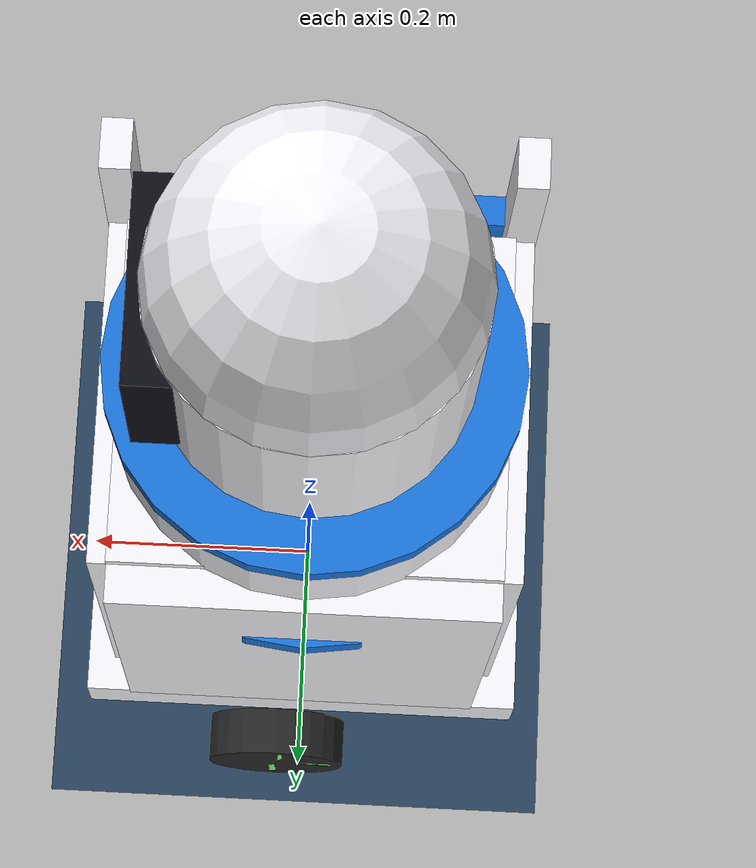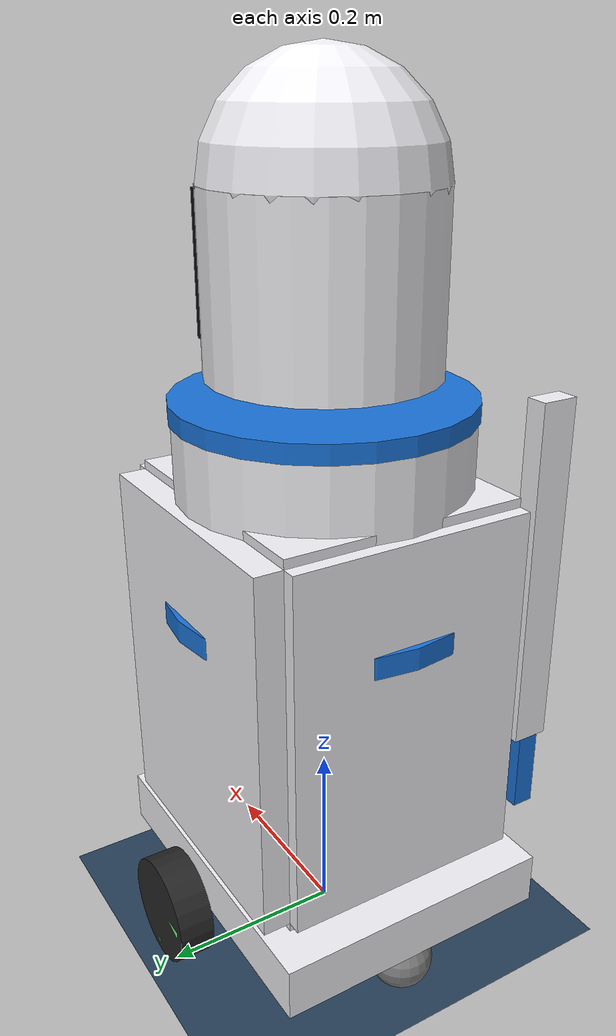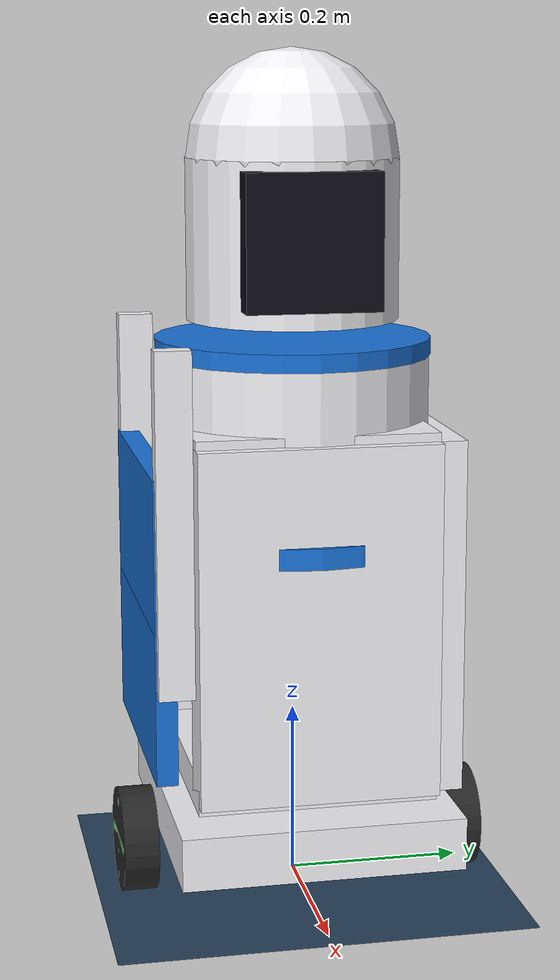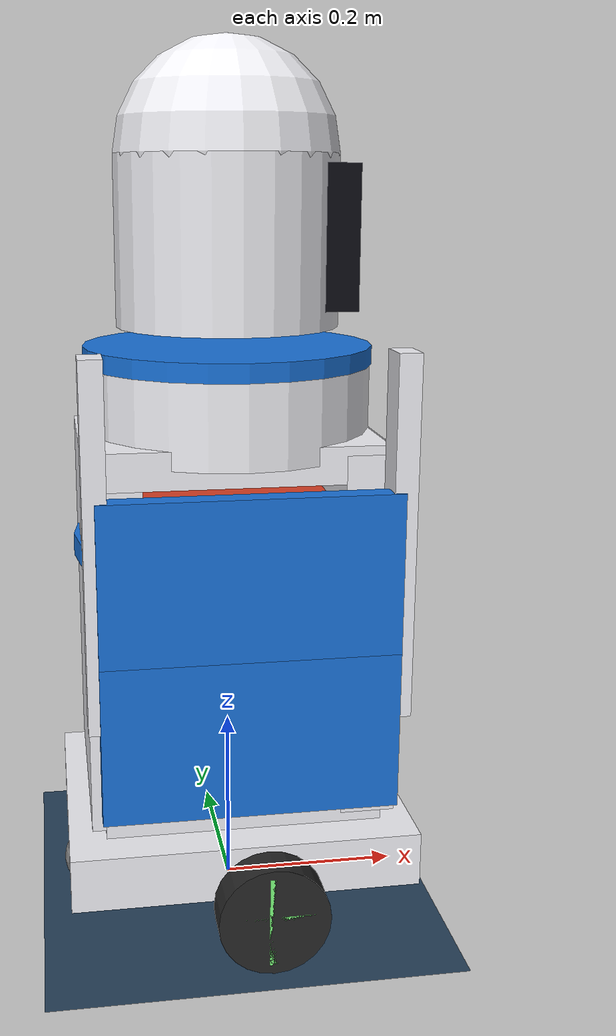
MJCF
<mujoco model="concierge_delivery_bot_v2">
  <compiler autolimits="true"/>

  <asset>
    <texture name="grid" type="2d" builtin="checker" width="512" height="512"
              rgb1=".1 .2 .3" rgb2=".2 .3 .4"/>
    <material name="grid" texture="grid" texrepeat="1 1" texuniform="true" reflectance=".2"/>
    <material name="shell_white" rgba="0.95 0.95 0.97 1"/>
    <material name="shell_accent" rgba="0.1 0.45 0.85 1"/>
    <material name="screen_dark" rgba="0.05 0.05 0.08 1"/>
  </asset>

  <default>
    <joint damping="1.5" actuatorfrcrange="-15 15"/>
    <default class="wheel">
      <geom type="cylinder" size="0.06 0.02" rgba="0.15 0.15 0.15 1"/>
    </default>
    <default class="decor">
      <site type="box" rgba="0.5 1 0.5 1"/>
    </default>
    <default class="shell">
      <geom contype="0" conaffinity="0" group="2"/>
    </default>
  </default>

  <worldbody>
    <geom type="plane" size="5.5 3.7 .01" material="grid"/>

    <body name="robot" pos="0 0 0.09">
      <freejoint/>
      <light name="top light" pos="0 0 2.5" mode="trackcom" diffuse=".7 .7 .7" ambient=".3 .3 .3"/>
      <light name="fill light" pos="1.5 -1 1.2" dir="-1 1 -0.5" diffuse=".5 .5 .5"/>

      <geom name="rear_support" pos="-0.16 0 -0.055" type="sphere" size="0.035"
            condim="1" priority="1"/>

      <geom name="chassis" type="box" pos="0 0 0" size="0.19 0.16 0.03" class="shell" material="shell_white"/>
      <geom name="chassis_collision" type="box" pos="0 0 0" size="0.19 0.16 0.03" rgba="0 0 0 0" group="3"/>

      <body name="left_wheel" pos="0.02 0.19 -0.03" zaxis="0 1 0">
        <joint name="left"/>
        <geom class="wheel"/>
        <site class="decor" size="0.006 0.05 0.02"/>
        <site class="decor" size="0.05 0.006 0.02"/>
      </body>
      <body name="right_wheel" pos="0.02 -0.19 -0.03" zaxis="0 1 0">
        <joint name="right"/>
        <geom class="wheel"/>
        <site class="decor" size="0.006 0.05 0.02"/>
        <site class="decor" size="0.05 0.006 0.02"/>
      </body>

      <body name="tower" pos="0 0 0.03">
        <inertial pos="0 0 0.35" mass="14" diaginertia="0.7 0.7 0.18"/>

        <geom name="wall_back"  type="box" pos="0 0.135 0.22" size="0.15 0.03 0.20" material="shell_white" class="shell"/>
        <geom name="wall_left"  type="box" pos="0.135 0 0.22" size="0.03 0.135 0.20" material="shell_white" class="shell"/>
        <geom name="wall_right" type="box" pos="-0.135 0 0.22" size="0.03 0.135 0.20" material="shell_white" class="shell"/>
        <geom name="wall_floor" type="box" pos="0 0 0.03" size="0.15 0.135 0.02" material="shell_white" class="shell"/>
        <geom name="wall_ceiling" type="box" pos="0 0 0.41" size="0.15 0.135 0.02" material="shell_white" class="shell"/>
        <!-- -y side is deliberately open: that's the compartment mouth
             the lid below covers when closed -->

        <geom name="tower_lower_skin" type="cylinder" pos="0 0.02 0.22" size="0.19 0.20"
              material="shell_white" class="shell" rgba="0.95 0.95 0.97 0.0"/>

        <geom name="accent_ring_low" type="cylinder" pos="0 0 0.30" size="0.172 0.012"
              material="shell_accent" class="shell"/>

        <!-- Mid section: same radius as lower, no visible seam/step -->
        <geom name="tower_mid" type="cylinder" pos="0 0 0.46" size="0.155 0.05"
              material="shell_white" class="shell"/>
        <geom name="accent_ring_mid" type="cylinder" pos="0 0 0.51" size="0.157 0.01"
              material="shell_accent" class="shell"/>

        <!-- Upper head unit: narrower cylinder capped with a dome, so the
             screen sits ON the head unit itself rather than floating on a
             separate box below it -->
        <geom name="tower_upper" type="cylinder" pos="0 0 0.63" size="0.12 0.09"
              material="shell_white" class="shell"/>
        <geom name="tower_head" type="sphere" pos="0 0 0.72" size="0.12"
              material="shell_white" class="shell"/>

        <!-- Face/screen: curved band on the head unit, angled slightly
             upward the way Pudu/Keenon screens are, sized to read as a
             face rather than a panel -->
        <geom name="screen" type="box" pos="0.108 0 0.635" size="0.02 0.075 0.075"
              material="screen_dark" class="shell"/>

        <geom name="tower_collision" type="cylinder" pos="0 0 0.45" size="0.17 0.42"
              rgba="0 0 0 0" group="3"/>

        <geom name="payload_demo" type="box" pos="0 0.02 0.27" size="0.12 0.09 0.09"
              rgba="0.85 0.25 0.15 1" class="shell"/>

        <!-- Guide rails: fixed to the tower, flank the opening on both
             sides, extend upward the full travel distance so the door
             has somewhere to slide into -->
        <geom name="rail_left" type="box" pos="0.155 -0.16 0.34" size="0.012 0.02 0.19"
              material="shell_white" class="shell"/>
        <geom name="rail_right" type="box" pos="-0.155 -0.16 0.34" size="0.012 0.02 0.19"
              material="shell_white" class="shell"/>

        <body name="lid_top" pos="0 -0.17 0.305">
          <joint name="lid_top_slide" type="slide" axis="0 0 1" pos="0 0 0"
                 range="0 0.16" damping="8" actuatorfrcrange="-40 40"/>
          <inertial pos="0 0 0" mass="0.25" diaginertia="0.003 0.003 0.001"/>
          <geom name="lid_top_geom" type="box" pos="0 0 0" size="0.155 0.012 0.085"
                material="shell_accent" class="shell"/>
          <geom name="lid_top_collision" type="box" pos="0 0 0" size="0.155 0.012 0.085"
                rgba="0 0 0 0" group="3"/>
        </body>

        <body name="lid_bottom" pos="0 -0.17 0.135">
          <joint name="lid_bottom_slide" type="slide" axis="0 0 -1" pos="0 0 0"
                 range="0 0.04" damping="8" actuatorfrcrange="-40 40"/>
          <inertial pos="0 0 0" mass="0.25" diaginertia="0.003 0.003 0.001"/>
          <geom name="lid_bottom_geom" type="box" pos="0 0 0" size="0.155 0.012 0.085"
                material="shell_accent" class="shell"/>
          <geom name="lid_bottom_collision" type="box" pos="0 0 0" size="0.155 0.012 0.085"
                rgba="0 0 0 0" group="3"/>
        </body>

        <site name="payload_site" pos="0 0 0.30" size="0.02" rgba="1 0 0 0.3"/>
      </body>

      <site name="base_imu" pos="0 0 0" size="0.01"/>

      <camera name="chase" mode="fixed" pos="-0.8 0.15 0.55" xyaxes="-0.5 -0.87 0  0.3 -0.17 0.94"/>
      <camera name="lid" mode="fixed" pos="0 -0.27 0.22" xyaxes="1 0 0  0 0.3 0.95" fovy="100"/>
    </body>
  </worldbody>

  <tendon>
    <fixed name="forward">
      <joint joint="left" coef=".5"/>
      <joint joint="right" coef=".5"/>
    </fixed>
    <fixed name="turn">
      <joint joint="left" coef="-.5"/>
      <joint joint="right" coef=".5"/>
    </fixed>
  </tendon>

  <actuator>
    <motor name="forward" tendon="forward" ctrlrange="-8 8"/>
    <motor name="turn" tendon="turn" ctrlrange="-8 8"/>
    <position name="lid_top_pos" joint="lid_top_slide" kp="200" kv="20" ctrlrange="0 0.16"/>
    <position name="lid_bottom_pos" joint="lid_bottom_slide" kp="3000" kv="80" ctrlrange="0 0.04"/>
  </actuator>

  <sensor>
    <jointactuatorfrc name="right" joint="right"/>
    <jointactuatorfrc name="left" joint="left"/>
    <gyro name="base_gyro" site="base_imu"/>
    <accelerometer name="base_accel" site="base_imu"/>
    <jointpos name="lid_top_position" joint="lid_top_slide"/>
    <jointpos name="lid_bottom_position" joint="lid_bottom_slide"/>
  </sensor>

  <keyframe>
    <key name="home" qpos="0 0 0.09 1 0 0 0 0 0 0 0"/>
  </keyframe>
</mujoco>
